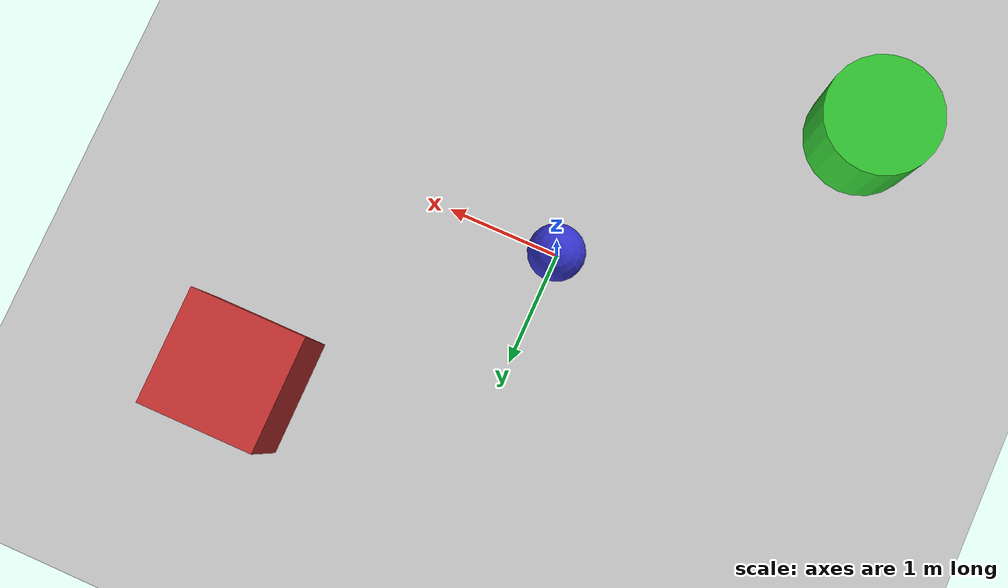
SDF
<?xml version="1.0" ?>
<sdf version="1.6">
  <world name="adversarial_environment">
    <!-- Physics -->
    <physics type="ode">
      <real_time_update_rate>1000</real_time_update_rate>
      <max_step_size>0.001</max_step_size>
      <real_time_factor>1</real_time_factor>
    </physics>

    <!-- Lighting -->
    <scene>
      <ambient>0.4 0.4 0.4 1</ambient>
      <shadows>true</shadows>
    </scene>

    <!-- Ground Plane -->
    <include>
      <uri>model://ground_plane</uri>
    </include>

    <!-- Sun -->
    <include>
      <uri>model://sun</uri>
    </include>

    <!-- Add some obstacles -->
    <model name="obstacle_1">
      <pose>2 2 0.5 0 0 0</pose>
      <link name="link">
        <collision name="collision">
          <geometry>
            <box>
              <size>1 1 1</size>
            </box>
          </geometry>
        </collision>
        <visual name="visual">
          <geometry>
            <box>
              <size>1 1 1</size>
            </box>
          </geometry>
          <material>
            <ambient>0.8 0.2 0.2 1</ambient>
            <diffuse>0.8 0.2 0.2 1</diffuse>
            <specular>0.8 0.2 0.2 1</specular>
          </material>
        </visual>
      </link>
    </model>

    <model name="obstacle_2">
      <pose>-2 -2 0.5 0 0 0</pose>
      <link name="link">
        <collision name="collision">
          <geometry>
            <cylinder>
              <radius>0.5</radius>
              <length>1</length>
            </cylinder>
          </geometry>
        </collision>
        <visual name="visual">
          <geometry>
            <cylinder>
              <radius>0.5</radius>
              <length>1</length>
            </cylinder>
          </geometry>
          <material>
            <ambient>0.2 0.8 0.2 1</ambient>
            <diffuse>0.2 0.8 0.2 1</diffuse>
            <specular>0.2 0.8 0.2 1</specular>
          </material>
        </visual>
      </link>
    </model>

    <!-- Add a target object -->
    <model name="target">
      <pose>0 0 0.25 0 0 0</pose>
      <link name="link">
        <collision name="collision">
          <geometry>
            <sphere>
              <radius>0.25</radius>
            </sphere>
          </geometry>
        </collision>
        <visual name="visual">
          <geometry>
            <sphere>
              <radius>0.25</radius>
            </sphere>
          </geometry>
          <material>
            <ambient>0.2 0.2 0.8 1</ambient>
            <diffuse>0.2 0.2 0.8 1</diffuse>
            <specular>0.2 0.2 0.8 1</specular>
          </material>
        </visual>
      </link>
    </model>
  </world>
</sdf>
